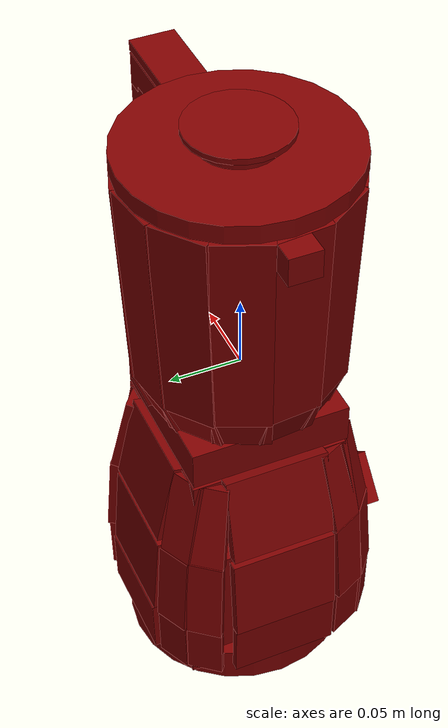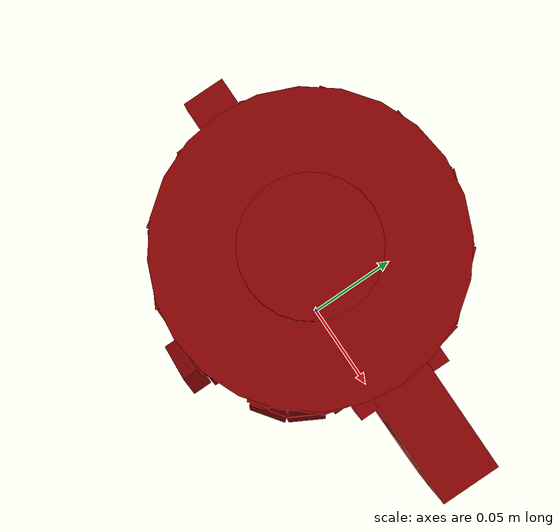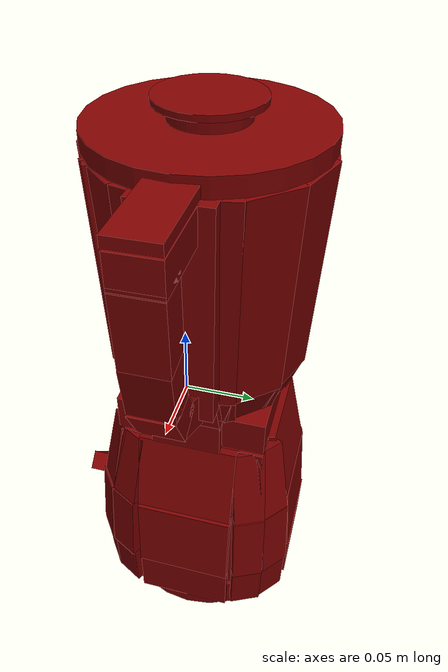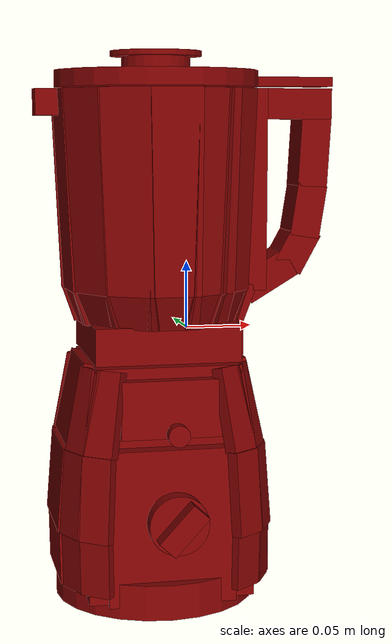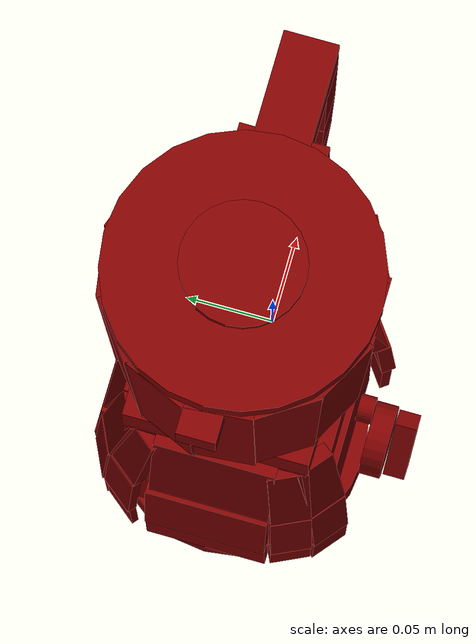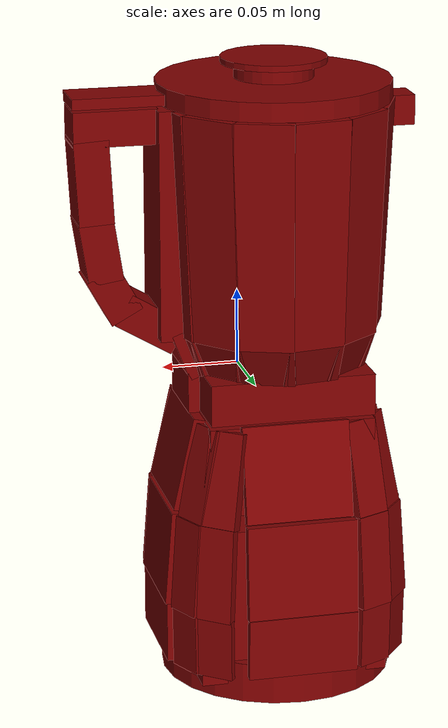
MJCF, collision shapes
<?xml version='1.0' encoding='UTF-8'?>
<mujoco model="model">
  <option timestep="0.002" gravity="0.0 0.0 -9.81"/>
  <compiler angle="radian"/>
  <asset>
    <mesh file="visuals/Blade001.obj" name="Blade001_vis"/>
    <mesh file="visuals/Body001.obj" name="Body001_vis"/>
    <mesh file="visuals/Body002.obj" name="Body002_vis"/>
    <mesh file="visuals/Button001.obj" name="Button001_vis"/>
    <mesh file="visuals/Jug001.obj" name="Jug001_vis"/>
    <mesh file="visuals/Jug001_Clear.obj" name="Jug001_Clear_vis"/>
    <mesh file="visuals/Knob001.obj" name="Knob001_vis"/>
    <mesh file="visuals/Lid001.obj" name="Lid001_vis"/>
    <texture file="visuals/T_BC001.png" name="Body001_material" type="2d"/>
    <material name="Body001_material" rgba="1 1 1 1.0" texture="Body001_material" shininess="0.141421377658844" specular="0.9381"/>
    <texture file="visuals/T_BC001.png" name="Body002_material" type="2d"/>
    <material name="Body002_material" rgba="1 1 1 1.0" texture="Body002_material" shininess="0.141421377658844" specular="0.9381"/>
    <texture file="visuals/T_BC001.png" name="Button001_material" type="2d"/>
    <material name="Button001_material" rgba="1 1 1 1.0" texture="Button001_material" shininess="0.141421377658844" specular="0.3103448502657381"/>
    <texture file="visuals/T_BC001.png" name="Jug001_material" type="2d"/>
    <material name="Jug001_material" rgba="1 1 1 1.0" texture="Jug001_material" shininess="0.141421377658844" specular="1"/>
    <texture file="visuals/T_BC001.png" name="Blade001_material" type="2d"/>
    <material name="Blade001_material" rgba="1 1 1 1.0" texture="Blade001_material" shininess="0.141421377658844" specular="0.81"/>
    <texture file="visuals/T_BC001.png" name="Jug001_Clear_material" type="2d"/>
    <material name="Jug001_Clear_material" rgba="1 1 1 0.75" texture="Jug001_Clear_material" shininess="0.141421377658844" specular="0.3103448502657381"/>
    <texture file="visuals/T_BC001.png" name="Lid001_material" type="2d"/>
    <material name="Lid001_material" rgba="1 1 1 1.0" texture="Lid001_material" shininess="0.141421377658844" specular="0.3103448502657381"/>
    <texture file="visuals/T_BC001.png" name="Knob001_material" type="2d"/>
    <material name="Knob001_material" rgba="1 1 1 1.0" texture="Knob001_material" shininess="0.141421377658844" specular="0.3103448502657381"/>
  </asset>
  <default>
    <default class="visual">
      <geom conaffinity="0" contype="0" group="1" type="mesh"/>
    </default>
    <default class="collision">
      <geom group="0" rgba="0.5 0 0 0.5"/>
    </default>
    <default class="spawn">
      <geom group="0" rgba="1 1 1 0.5" contype="0" conaffinity="0"/>
      <site group="0" rgba="1 1 1 0.5"/>
    </default>
    <default class="region">
      <geom group="1" conaffinity="0" contype="0" rgba="0 1 0 0"/>
    </default>
  </default>
  <worldbody>
    <body>
      <body name="object">
        <geom mesh="Body001_vis" type="mesh" solimp="0.998 0.998 0.001" solref="0.001 1" friction="0.95 0.3 0.1" class="visual" material="Body001_material"/>
        <geom class="collision" type="box" pos="-0.021253 0.010881 -0.144020" size="0.06211231276392937 0.06211231276392937 0.052844155579805374" quat="1.0 0.0 0.0 0.0" density="1000.0"/>
        <geom class="collision" type="box" pos="-0.085225 0.010881 -0.052095" size="0.004011073149740696 0.035763565450906754 0.03144948557019234" quat="0.9938421845436096 0.0 0.11080475151538849 0.0" density="1000.0"/>
        <geom class="collision" type="box" pos="-0.021253 0.012532 -0.052728" size="0.05449925735592842 0.05350634828209877 0.029757998883724213" quat="1.0 0.0 0.0 0.0" density="1000.0"/>
        <geom class="collision" type="box" pos="0.043361 0.011727 -0.051925" size="0.003840292803943157 0.03641745075583458 0.031449493020772934" quat="7.503300025746285e-08 0.9938421845436096 -8.365526049658456e-09 0.11080475151538849" density="1000.0"/>
        <geom class="collision" type="box" pos="-0.021372 0.075431 -0.051965" size="0.0029528222512453794 0.03522942587733269 0.03144948557019234" quat="0.7027524709701538 0.07835067808628082 0.07835064828395844 -0.7027526497840881" density="1000.0"/>
        <geom class="collision" type="box" pos="0.054589 0.011727 -0.115925" size="0.002964968793094158 0.03641745075583458 0.031449493020772934" quat="7.506496757514469e-08 0.9992311000823975 6.5941954119352886e-09 0.03920683637261391" density="1000.0"/>
        <geom class="collision" type="box" pos="0.056308 0.011727 -0.167086" size="0.002594197867438197 0.036417365074157715 0.020559867843985558" quat="1.0 0.0 0.0 0.0" density="1000.0"/>
        <geom class="collision" type="box" pos="-0.097052 0.011727 -0.115874" size="0.003622443415224552 0.03641745075583458 0.031449493020772934" quat="0.03920678049325943 1.5983529522145545e-07 -0.9992311000823975 -6.905221994202293e-08" density="1000.0"/>
        <geom class="collision" type="box" pos="-0.098702 0.011727 -0.167097" size="0.0027845080476254225 0.03641745075583458 0.020521236583590508" quat="0.00966708268970251 -1.636429800555561e-07 0.9999532699584961 7.706934468387772e-08" density="1000.0"/>
        <geom class="collision" type="box" pos="-0.022777 0.084834 -0.116017" size="0.00343827111646533 0.03641745075583458 0.031449493020772934" quat="0.02772333472967148 -0.7065629363059998 -0.7065632939338684 -0.02772342599928379" density="1000.0"/>
        <geom class="collision" type="box" pos="-0.022777 0.088382 -0.167099" size="0.002852672478184104 0.03641745075583458 0.020521236583590508" quat="0.006835713982582092 0.7070736289024353 0.7070738673210144 -0.006835605949163437" density="1000.0"/>
        <geom class="collision" type="box" pos="-0.081538 -0.032782 -0.054651" size="0.004589538089931011 0.01190786249935627 0.031449489295482635" quat="0.9695470929145813 -0.02435024455189705 0.10809601098299026 0.21840497851371765" density="1000.0"/>
        <geom class="collision" type="box" pos="-0.091432 -0.037045 -0.115865" size="0.0037317133974283934 0.01212557777762413 0.031449493020772934" quat="0.03824836015701294 0.21958932280540466 -0.9748042821884155 0.008615943603217602" density="1000.0"/>
        <geom class="collision" type="box" pos="-0.092642 -0.037619 -0.167093" size="0.002582535147666931 0.01212557777762413 0.02052123472094536" quat="0.009430748410522938 -0.21974815428256989 0.9755087494850159 0.002124496502801776" density="1000.0"/>
        <geom class="collision" type="box" pos="-0.070109 -0.046688 -0.055027" size="0.0046595120802521706 0.01190786249935627 0.031449489295482635" quat="0.8976986408233643 -0.0475454218685627 0.10008554905653 0.4264497756958008" density="1000.0"/>
        <geom class="collision" type="box" pos="-0.077223 -0.054798 -0.115995" size="0.003853235626593232 0.012125578708946705 0.031449493020772934" quat="0.03541398048400879 0.42876216769218445 -0.9025662541389465 0.01682324893772602" density="1000.0"/>
        <geom class="collision" type="box" pos="-0.078455 -0.056309 -0.167073" size="0.00331959524191916 0.012125578708946705 0.02052123472094536" quat="0.008731864392757416 -0.42907196283340454 0.9032185673713684 0.004148136358708143" density="1000.0"/>
        <geom class="collision" type="box" pos="-0.067389 0.069451 -0.054751" size="0.004136456176638603 0.01190786249935627 0.031449489295482635" quat="0.8400089740753174 0.05921720340847969 0.09365364164113998 -0.5311377048492432" density="1000.0"/>
        <geom class="collision" type="box" pos="-0.071676 0.079395 -0.115895" size="0.003345175413414836 0.01212557777762413 0.031449493020772934" quat="0.03313807025551796 -0.5340174436569214 -0.844563901424408 -0.020953278988599777" density="1000.0"/>
        <geom class="collision" type="box" pos="-0.072414 0.080951 -0.167093" size="0.0025793202221393585 0.012125578708946705 0.02052123472094536" quat="0.008170791901648045 0.5344034433364868 0.845174252986908 -0.005166299641132355" density="1000.0"/>
        <geom class="collision" type="box" pos="-0.080742 0.057816 -0.055243" size="0.0036779623478651047 0.01190786249935627 0.031449489295482635" quat="0.9363142251968384 0.0371515266597271 0.10439086705446243 -0.3332236111164093" density="1000.0"/>
        <geom class="collision" type="box" pos="-0.088920 0.064985 -0.116063" size="0.0029802799690514803 0.01212557777762413 0.031449493020772934" quat="0.036937300115823746 -0.33503010869026184 -0.9413913488388062 -0.013145629316568375" density="1000.0"/>
        <geom class="collision" type="box" pos="-0.090236 0.066058 -0.167052" size="0.0021978686563670635 0.012125578708946705 0.02052123472094536" quat="0.00910753570497036 0.3352721631526947 0.9420717358589172 -0.003241184866055846" density="1000.0"/>
        <geom class="collision" type="box" pos="0.036844 0.057628 -0.054740" size="0.004184875637292862 0.01190786249935627 0.031449489295482635" quat="0.21840499341487885 0.10809601098299026 0.02435024455189705 -0.9695470929145813" density="1000.0"/>
        <geom class="collision" type="box" pos="0.046941 0.061988 -0.115878" size="0.0035625386517494917 0.01212557777762413 0.031449493020772934" quat="-0.00861596129834652 0.9748042225837708 0.2195894867181778 0.038248416036367416" density="1000.0"/>
        <geom class="collision" type="box" pos="0.048475 0.062715 -0.167097" size="0.0027716634795069695 0.01212557777762413 0.02052123472094536" quat="0.002124497899785638 0.9755087494850159 0.21974819898605347 -0.009430751204490662" density="1000.0"/>
        <geom class="collision" type="box" pos="0.025455 0.071315 -0.055140" size="0.004147086292505264 0.01190786249935627 0.031449489295482635" quat="0.42644959688186646 0.1000855416059494 0.04754539206624031 -0.8976987600326538" density="1000.0"/>
        <geom class="collision" type="box" pos="0.032484 0.079320 -0.116045" size="0.003216261975467205 0.01212557777762413 0.031449493020772934" quat="-0.016823291778564453 0.902566134929657 0.42876243591308594 0.035414036363363266" density="1000.0"/>
        <geom class="collision" type="box" pos="0.033408 0.080455 -0.167052" size="0.0021978686563670635 0.012125578708946705 0.02052123472094536" quat="0.004148140549659729 0.9032185077667236 0.4290720522403717 -0.008731871843338013" density="1000.0"/>
        <geom class="collision" type="box" pos="0.025862 -0.047274 -0.054592" size="0.004858327563852072 0.01190786249935627 0.031449489295482635" quat="0.45094969868659973 -0.09874163568019867 0.05027693882584572 0.885644793510437" density="1000.0"/>
        <geom class="collision" type="box" pos="0.032138 -0.056567 -0.115810" size="0.004437038209289312 0.012125576846301556 0.031449493020772934" quat="0.01778990589082241 0.890447199344635 -0.4533945620059967 0.03493843600153923" density="1000.0"/>
        <geom class="collision" type="box" pos="0.032744 -0.057400 -0.167101" size="0.0029759902972728014 0.012125578708946705 0.02052123472094536" quat="-0.004386311396956444 0.8910906910896301 -0.4537222981452942 -0.008614689111709595" density="1000.0"/>
        <geom class="collision" type="box" pos="0.037595 -0.033442 -0.054942" size="0.005046293139457703 0.01190786249935627 0.031449489295482635" quat="0.24495752155780792 -0.1073862612247467 0.02731061540544033 0.9631812572479248" density="1000.0"/>
        <geom class="collision" type="box" pos="0.047004 -0.039004 -0.115954" size="0.004374327603727579 0.01212557777762413 0.031449493020772934" quat="0.009663566015660763 0.9684039950370789 -0.2462853491306305 0.037997230887413025" density="1000.0"/>
        <geom class="collision" type="box" pos="0.048181 -0.039644 -0.167072" size="0.0032286769710481167 0.012125578708946705 0.02052123472094536" quat="-0.0023826216347515583 0.9691038727760315 -0.24646343290805817 -0.009368867613375187" density="1000.0"/>
        <geom class="collision" type="box" pos="-0.021253 -0.037206 -0.052728" size="0.03730534389615059 0.013394738547503948 0.02153908833861351" quat="1.0 0.0 0.0 0.0" density="1000.0"/>
        <geom class="collision" type="box" pos="-0.021253 -0.040604 -0.140658" size="0.04777161404490471 0.013394767418503761 0.05863378942012787" quat="1.0 0.0 0.0 0.0" density="1000.0"/>
        <geom class="collision" type="cylinder" pos="-0.023179 0.012781 -0.194300" size="0.07701032608747482 0.013251644559204578" quat="1.0 0.0 0.0 0.0" density="1000.0"/>
        <body name="Body002">
          <geom mesh="Body002_vis" type="mesh" solimp="0.998 0.998 0.001" solref="0.001 1" friction="0.95 0.3 0.1" class="visual" material="Body002_material"/>
        </body>
        <body name="Button001">
          <joint axis="0.0 1.0 0.0" pos="-0.019041 -0.056367 -0.043471" limited="true" name="Button001_joint" range="0.0 0.002" type="slide" damping="1" frictionloss="1" armature=".01" stiffness="0.05"/>
          <geom mesh="Button001_vis" type="mesh" solimp="0.998 0.998 0.001" solref="0.001 1" friction="0.95 0.3 0.1" class="visual" material="Button001_material"/>
          <geom class="collision" type="cylinder" pos="-0.018965 -0.061920 -0.069273" size="0.008001218549907207 0.004626220557838678" quat="0.7071068286895752 0.7071067690849304 0.0 0.0" density="1000.0"/>
        </body>
        <body name="Jug001">
          <joint axis="0.0 0.0 1.0" pos="0.016907 0.010881 0.078508" limited="true" name="Jug001_joint" range="0.0 0.1" type="slide" damping="1" frictionloss="1" armature=".01" stiffness="0.05"/>
          <geom mesh="Jug001_vis" type="mesh" solimp="0.998 0.998 0.001" solref="0.001 1" friction="0.95 0.3 0.1" class="visual" material="Jug001_material"/>
          <geom class="collision" type="box" pos="-0.021574 0.011901 -0.006893" size="0.05418802425265312 0.05418802425265312 0.013749852776527405" quat="1.0 0.0 0.0 0.0" density="1000.0"/>
          <geom class="collision" type="cylinder" pos="-0.020338 0.011551 0.011570" size="0.015780305489897728 0.008454694412648678" quat="1.0 0.0 0.0 0.0" density="1000.0"/>
          <geom class="collision" type="box" pos="0.084023 0.010951 0.167506" size="0.027125367894768715 0.015223980881273746 0.011412791907787323" quat="1.0 0.0 0.0 0.0" density="1000.0"/>
          <geom class="collision" type="box" pos="0.098383 0.010951 0.132888" size="0.027125367894768715 0.015223980881273746 0.011412791907787323" quat="0.726495087146759 0.0 -0.6871716380119324 0.0" density="1000.0"/>
          <geom class="collision" type="box" pos="0.086126 0.010951 0.058673" size="0.01660267449915409 0.015223980881273746 0.011412792839109898" quat="0.8605725169181824 0.0 -0.5093279480934143 0.0" density="1000.0"/>
          <geom class="collision" type="box" pos="0.062295 0.010951 0.037959" size="0.020991992205381393 0.015223980881273746 0.011412791907787323" quat="0.9642720222473145 0.0 -0.26491403579711914 0.0" density="1000.0"/>
          <geom class="collision" type="box" pos="0.094394 0.010951 0.087505" size="0.020037682726979256 0.015223980881273746 0.011412792839109898" quat="0.7592610120773315 0.0 -0.6507862210273743 0.0" density="1000.0"/>
          <geom class="collision" type="box" pos="0.051372 0.010757 0.103765" size="0.007271790876984596 0.02493887022137642 0.07511977106332779" quat="1.0 0.0 0.0 0.0" density="1000.0"/>
          <geom class="collision" type="box" pos="0.041907 0.010757 0.017827" size="0.016089878976345062 0.02493887022137642 0.0036388104781508446" quat="0.8233922719955444 0.0 -0.5674726366996765 0.0" density="1000.0"/>
          <geom class="collision" type="box" pos="0.037282 0.010757 -0.004166" size="0.0036560611333698034 0.02493887022137642 0.016093773767352104" quat="1.0 0.0 0.0 0.0" density="1000.0"/>
          <body name="Blade001">
            <joint axis="0.0 0.0 1.0" pos="-0.020283 0.011425 0.028785" limited="false" name="Blade001_joint" range="0 360" type="hinge" damping="1" frictionloss="1" armature=".01" stiffness="0.05"/>
            <geom mesh="Blade001_vis" type="mesh" solimp="0.998 0.998 0.001" solref="0.001 1" friction="0.95 0.3 0.1" class="visual" material="Blade001_material"/>
            <geom class="collision" type="box" pos="-0.020034 0.009960 0.023331" size="0.014491913840174675 0.017638348042964935 0.0007777379360049963" quat="1.0 0.0 0.0 0.0" density="1000.0"/>
            <geom class="collision" type="box" pos="-0.020219 0.043348 0.023331" size="0.0050698015838861465 0.016161534935235977 0.0007777377031743526" quat="1.0 0.0 0.0 0.0" density="1000.0"/>
            <geom class="collision" type="box" pos="-0.020219 -0.020872 0.023331" size="0.0050698015838861465 0.016161534935235977 0.0007777377031743526" quat="1.0 0.0 0.0 0.0" density="1000.0"/>
            <geom class="collision" type="box" pos="-0.051909 0.011219 0.028323" size="0.0050698015838861465 0.01778339222073555 0.0007777350838296115" quat="0.6976117491722107 -0.1154894158244133 0.1154894158244133 -0.6976118087768555" density="1000.0"/>
            <geom class="collision" type="box" pos="0.011316 0.011219 0.028425" size="0.0050698015838861465 0.01746790111064911 0.0007777350838296115" quat="0.11548933386802673 0.6976116299629211 0.6976119875907898 0.11548939347267151" density="1000.0"/>
          </body>
          <body name="Jug001_Clear">
            <geom class="region" name="reg_int" type="box" pos="-0.021175000000000003 0.011158000000000001 0.093347" size="0.054386000000000004 0.054299 0.085662"/>
            <geom mesh="Jug001_Clear_vis" type="mesh" solimp="0.998 0.998 0.001" solref="0.001 1" friction="0.95 0.3 0.1" class="visual" material="Jug001_Clear_material"/>
            <geom class="collision" type="box" pos="-0.019763 -0.058645 0.104612" size="0.018826475366950035 0.002732254099100828 0.0740242451429367" quat="0.999740719795227 0.022769343107938766 0.0 0.0" density="1000.0"/>
            <geom class="collision" type="box" pos="-0.019763 -0.050294 0.018934" size="0.018826471641659737 0.002732254099100828 0.013669250532984734" quat="0.9850984811782837 0.1719912439584732 0.0 0.0" density="1000.0"/>
            <geom class="collision" type="box" pos="-0.052758 -0.051102 0.104612" size="0.018826475366950035 0.002732254331931472 0.0740242451429367" quat="0.9696826338768005 0.02208472415804863 -0.005541310645639896 -0.2433045655488968" density="1000.0"/>
            <geom class="collision" type="box" pos="-0.048815 -0.043740 0.018934" size="0.018826471641659737 0.002732254099100828 0.013669250532984734" quat="0.9554806351661682 0.16682018339633942 -0.041857097297906876 -0.23974105715751648" density="1000.0"/>
            <geom class="collision" type="box" pos="-0.071748 -0.023646 0.018934" size="0.018826471641659737 0.002732254331931472 0.013669250532984734" quat="0.8656151294708252 0.1511302888393402 -0.08210128545761108 -0.47024402022361755" density="1000.0"/>
            <geom class="collision" type="box" pos="-0.078754 -0.028192 0.104612" size="0.018826475366950035 0.0027322538662701845 0.0740242451429367" quat="0.878481388092041 0.020007604733109474 -0.010869103483855724 -0.47723373770713806" density="1000.0"/>
            <geom class="collision" type="box" pos="-0.090387 0.003617 0.104612" size="0.018826475366950035 0.0027322538662701845 0.0740242451429367" quat="0.7358109354972839 0.016758248209953308 -0.01541435532271862 -0.6768041253089905" density="1000.0"/>
            <geom class="collision" type="box" pos="-0.082065 0.004313 0.018934" size="0.018826471641659737 0.002732254331931472 0.013669250532984734" quat="0.7250343561172485 0.12658587098121643 -0.11643454432487488 -0.6668914556503296" density="1000.0"/>
            <geom class="collision" type="box" pos="-0.077936 0.033863 0.018934" size="0.018826471641659737 0.002732254099100828 0.013669250532984734" quat="0.5405582189559937 0.09437765926122665 -0.1437840461730957 -0.823538601398468" density="1000.0"/>
            <geom class="collision" type="box" pos="-0.085598 0.037185 0.104612" size="0.018826475366950035 0.002732254099100828 0.0740242451429367" quat="0.5485929250717163 0.01249431911855936 -0.01903505250811577 -0.8357794880867004" density="1000.0"/>
            <geom class="collision" type="box" pos="-0.064836 0.065042 0.104612" size="0.018826475366950035 0.002732254099100828 0.0740242451429367" quat="0.3224077522754669 0.007342902012169361 -0.021552789956331253 -0.9463270306587219" density="1000.0"/>
            <geom class="collision" type="box" pos="-0.059737 0.058428 0.018934" size="0.018826471641659737 0.002732254099100828 0.013669250532984734" quat="0.31768572330474854 0.05546572059392929 -0.16280220448970795 -0.9324670433998108" density="1000.0"/>
            <geom class="collision" type="box" pos="-0.032190 0.071075 0.018934" size="0.018826471641659737 0.002732254331931472 0.013669250532984734" quat="0.07681706547737122 0.013411737978458405 -0.17146769165992737 -0.9820988178253174" density="1000.0"/>
            <geom class="collision" type="box" pos="-0.033488 0.079324 0.104612" size="0.018826475366950035 0.002732254099100828 0.0740242451429367" quat="0.0779588595032692 0.0017755278386175632 -0.02269996888935566 -0.9966965317726135" density="1000.0"/>
            <geom class="collision" type="box" pos="0.000654 0.076880 0.104612" size="0.018826475366950035 0.002732254099100828 0.0740242451429367" quat="0.1697516292333603 0.0038661318831145763 0.022438693791627884 0.9852238297462463" density="1000.0"/>
            <geom class="collision" type="box" pos="-0.002141 0.069010 0.018934" size="0.018826471641659737 0.002732254099100828 0.013669250532984734" quat="0.16726543009281158 0.0292033813893795 0.16949385404586792 0.970794141292572" density="1000.0"/>
            <geom class="collision" type="box" pos="0.023314 0.052827 0.018934" size="0.018826471641659737 0.002732254099100828 0.013669250532984734" quat="0.40139052271842957 0.07007995247840881 0.1570662409067154 0.899613618850708" density="1000.0"/>
            <geom class="collision" type="box" pos="0.029529 0.058405 0.104612" size="0.018826475366950035 0.002732254099100828 0.0740242451429367" quat="0.4073566794395447 0.009277631528675556 0.020793424919247627 0.9129852652549744" density="1000.0"/>
            <geom class="collision" type="box" pos="0.046104 0.028241 0.104612" size="0.018826475366950035 0.002732253633439541 0.0740242451429367" quat="0.6206277012825012 0.014134923927485943 0.01785062998533249 0.783774733543396" density="1000.0"/>
            <geom class="collision" type="box" pos="0.037975 0.026327 0.018934" size="0.018826471641659737 0.002732254099100828 0.013669250532984734" quat="0.6115379333496094 0.10677023231983185 0.13483738899230957 0.7722955346107483" density="1000.0"/>
            <geom class="collision" type="box" pos="0.038086 -0.004143 0.018934" size="0.018826471641659737 0.0027322538662701845 0.013669250532984734" quat="0.7845726609230042 0.13698099553585052 0.10400602221488953 0.5957052111625671" density="1000.0"/>
            <geom class="collision" type="box" pos="0.046130 -0.006387 0.104612" size="0.018826475366950035 0.002732254099100828 0.0740242451429367" quat="0.7962345480918884 0.018134422600269318 0.013768969103693962 0.6045594215393066" density="1000.0"/>
            <geom class="collision" type="box" pos="0.029890 -0.036263 0.104612" size="0.018826475366950035 0.002732254099100828 0.0740242451429367" quat="0.9198863506317139 0.020950598642230034 0.008917027153074741 0.3915235102176666" density="1000.0"/>
            <geom class="collision" type="box" pos="0.023871 -0.030473 0.018934" size="0.018826471641659737 0.002732254099100828 0.013669250532984734" quat="0.9064136147499084 0.158253476023674 0.06735609471797943 0.3857892155647278" density="1000.0"/>
            <geom class="collision" type="box" pos="0.007009 -0.043405 0.018934" size="0.018826471641659737 0.002732254099100828 0.013669250532984734" quat="0.9596347808837891 0.16754570603370667 0.03885239362716675 0.2225310206413269" density="1000.0"/>
            <geom class="collision" type="box" pos="0.010685 -0.050904 0.104612" size="0.018826475366950035 0.002732254099100828 0.0740242451429367" quat="0.9738985896110535 0.022180764004588127 0.005143522284924984 0.22583864629268646" density="1000.0"/>
            <geom class="collision" type="box" pos="-0.103692 0.010915 0.168573" size="0.00855797715485096 0.010857014916837215 0.009734752587974072" quat="1.0 0.0 0.0 0.0" density="1000.0"/>
          </body>
          <body name="Lid001">
            <joint axis="0.0 0.0 1.0" pos="0.007768 0.010882 0.181177" limited="true" name="Lid001_joint" range="0.0 0.1" type="slide" damping="1" frictionloss="1" armature=".01" stiffness="0.05"/>
            <geom mesh="Lid001_vis" type="mesh" solimp="0.998 0.998 0.001" solref="0.001 1" friction="0.95 0.3 0.1" class="visual" material="Lid001_material"/>
            <geom class="collision" type="cylinder" pos="-0.021221 0.010820 0.185718" size="0.07600142806768417 0.006195507012307644" quat="1.0 0.0 0.0 0.0" density="1000.0"/>
            <geom class="collision" type="cylinder" pos="-0.021221 0.010820 0.167138" size="0.06399042159318924 0.011746169999241829" quat="1.0 0.0 0.0 0.0" density="1000.0"/>
            <geom class="collision" type="cylinder" pos="-0.021221 0.010820 0.204097" size="0.03432024270296097 0.0019606673158705235" quat="1.0 0.0 0.0 0.0" density="1000.0"/>
            <geom class="collision" type="box" pos="0.080236 0.010957 0.183998" size="0.03143944963812828 0.015363558195531368 0.003451445372775197" quat="1.0 0.0 0.0 0.0" density="1000.0"/>
            <geom class="collision" type="cylinder" pos="-0.021221 0.010820 0.197514" size="0.02572418749332428 0.00496209692209959" quat="1.0 0.0 0.0 0.0" density="1000.0"/>
          </body>
        </body>
        <body name="Knob001">
          <joint axis="0.0 1.0 0.0" pos="-0.021078 -0.087395 -0.132159" limited="true" name="Knob001_joint" range="0.0 4.71238898038469" type="hinge" damping="0.05" armature="0.001" springref="-0.4"/>
          <geom mesh="Knob001_vis" type="mesh" solimp="0.998 0.998 0.001" solref="0.001 1" friction="0.95 0.3 0.1" class="visual" material="Knob001_material"/>
          <geom class="collision" type="cylinder" pos="-0.021244 -0.071605 -0.132226" size="0.021976053714752197 0.006431171204894781" quat="0.7071068286895752 0.7071067690849304 0.0 0.0" density="1000.0"/>
          <geom class="collision" type="box" pos="-0.020415 -0.085558 -0.132314" size="0.01853242702782154 0.006443426012992859 0.007792641408741474" quat="0.9151340126991272 -9.15176663157614e-15 -0.4031498432159424 -5.416676529534925e-08" density="1000.0"/>
        </body>
        <geom class="region" name="reg_main" type="box" pos="-0.026009 0.010860000000000002 0.0" size="0.086241 0.08096700000000001 0.207583"/>
      </body>
    </body>
  </worldbody>
  <actuator>
    <motor name="Button001_joint_actuator" joint="Button001_joint" gear="0.5"/>
    <motor name="Jug001_joint_actuator" joint="Jug001_joint" gear="100"/>
    <motor name="Knob001_joint_actuator" joint="Knob001_joint" gear="10"/>
    <motor name="Blade001_joint_actuator" joint="Blade001_joint" gear="10"/>
    <motor name="Lid001_joint_actuator" joint="Lid001_joint" gear="20"/>
  </actuator>
</mujoco>
